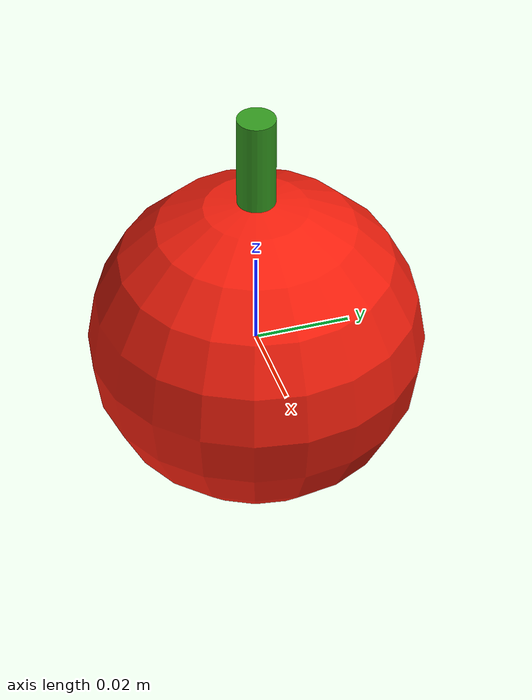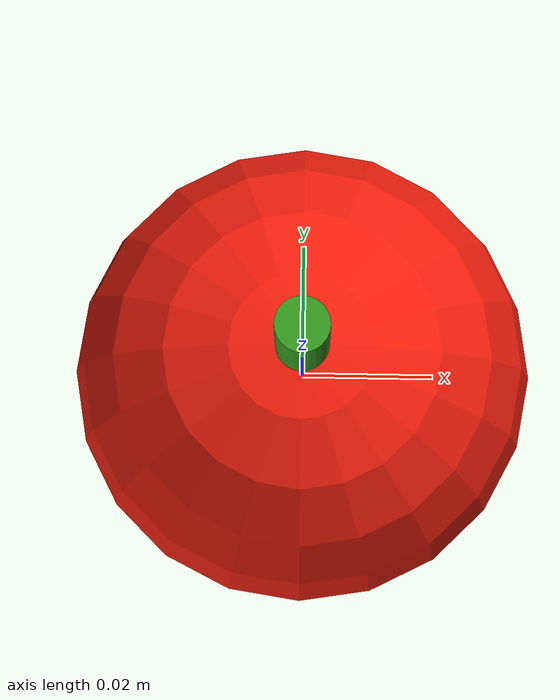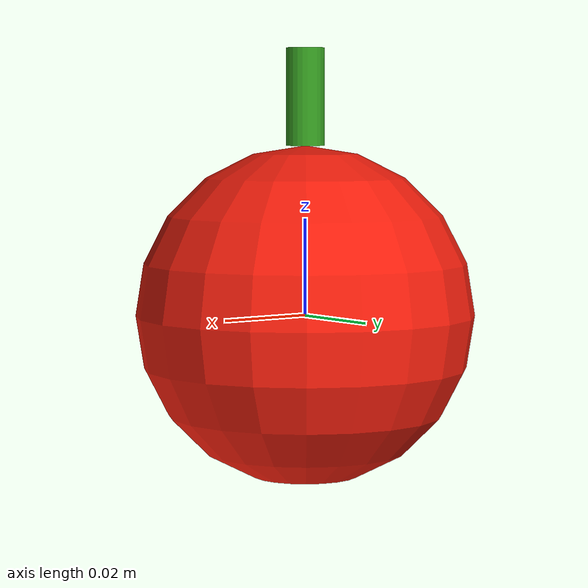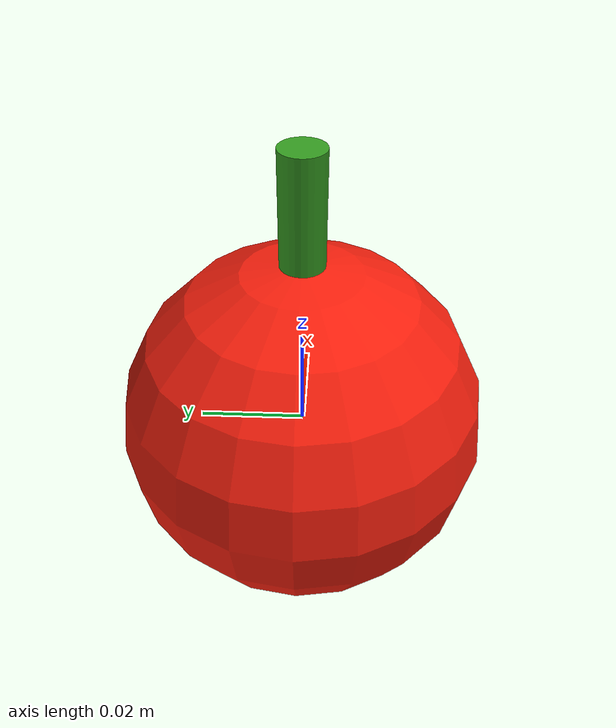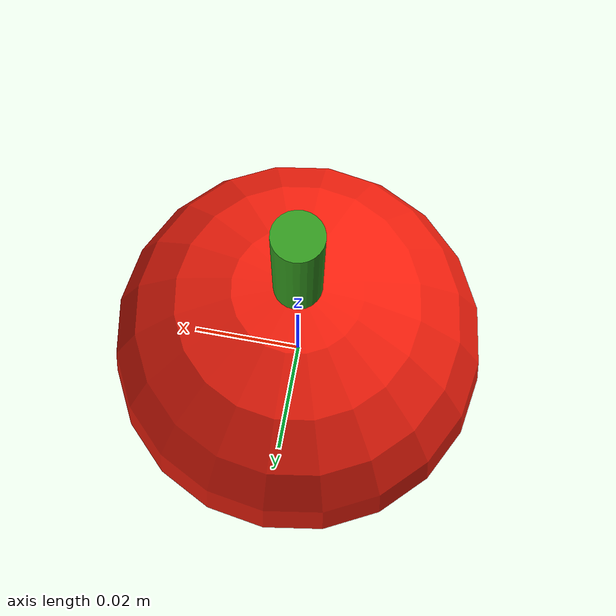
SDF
<?xml version="1.0" ?>
<sdf version="1.6">
  <model name="apple">
    <static>true</static>
    <pose>0 0 0 0 0 0</pose>
    <link name="apple_body">
      <inertial>
        <mass>0.15</mass>
        <inertia>
          <ixx>0.0000735</ixx><iyy>0.0000735</iyy><izz>0.0000735</izz>
          <ixy>0</ixy><ixz>0</ixz><iyz>0</iyz>
        </inertia>
      </inertial>
      <visual name="visual">
        <geometry><sphere><radius>0.035</radius></sphere></geometry>
        <material>
          <ambient>0.75 0.08 0.04 1</ambient>
          <diffuse>0.95 0.12 0.05 1</diffuse>
          <specular>0.4 0.4 0.4 1</specular>
        </material>
      </visual>
    </link>
    <link name="stem">
      <pose>0 0 0.045 0 0 0</pose>
      <inertial>
        <mass>0.005</mass>
        <inertia>
          <ixx>0.000001</ixx><iyy>0.000001</iyy><izz>0.000001</izz>
          <ixy>0</ixy><ixz>0</ixz><iyz>0</iyz>
        </inertia>
      </inertial>
      <visual name="stem_visual">
        <geometry><cylinder><radius>0.004</radius><length>0.02</length></cylinder></geometry>
        <material>
          <ambient>0.15 0.5 0.1 1</ambient>
          <diffuse>0.2 0.6 0.12 1</diffuse>
        </material>
      </visual>
    </link>
    <joint name="stem_joint" type="fixed">
      <parent>apple_body</parent>
      <child>stem</child>
      <pose>0 0 0.045 0 0 0</pose>
    </joint>
  </model>
</sdf>
